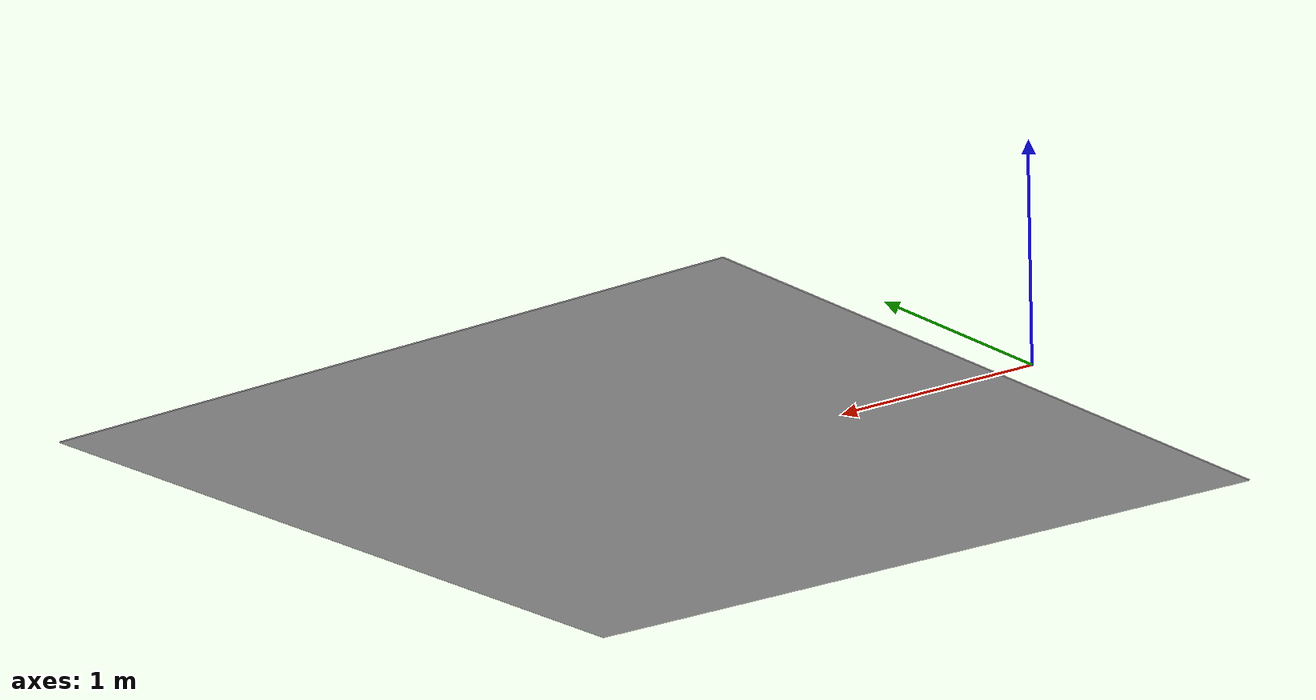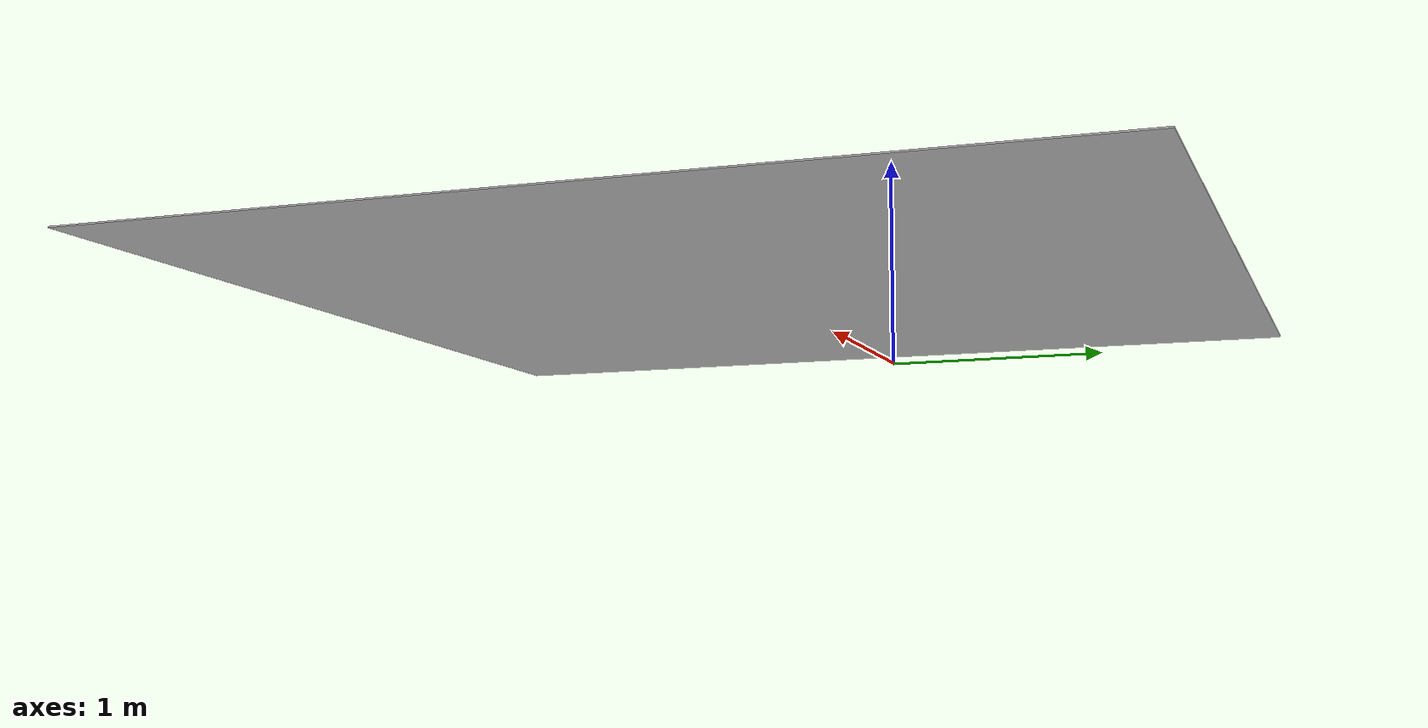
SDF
<?xml version="1.0"?>
<sdf version="1.4">
<model name="chessboard">
  <static>true</static>
    <link name="chessboard_link">
      <pose>2 0 0.005 0 0 0</pose>
      <collision name="collision">
        <geometry>
          <box>
            <normal>0 0 1</normal>
            <size>3.63636363636 3.63636363636 0.005</size>
          </box>
        </geometry>
        <surface>
          <friction>
            <ode>
              <mu>100</mu>
              <mu2>50</mu2>
            </ode>
          </friction>
        </surface>
      </collision>
      <visual name="chessboard_visual">
        <cast_shadows>true</cast_shadows>
        <geometry>
          <box>
            <normal>0 0 1</normal>
            <size>3.63636363636 3.63636363636 0.005</size>
          </box>
        </geometry>
        <material>
          <script>
            <uri>model://chessboard/materials/scripts</uri>
            <uri>model://chessboard/materials/textures</uri>
            <name>chessboard/Image</name>
          </script>
        </material>
      </visual>
    </link>
  </model>
</sdf>
